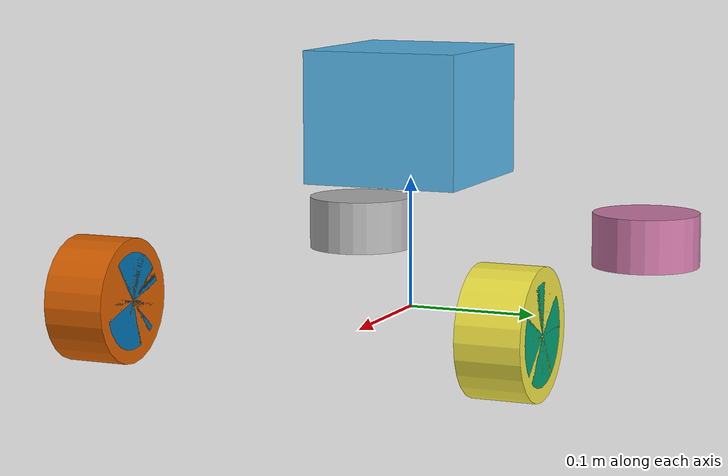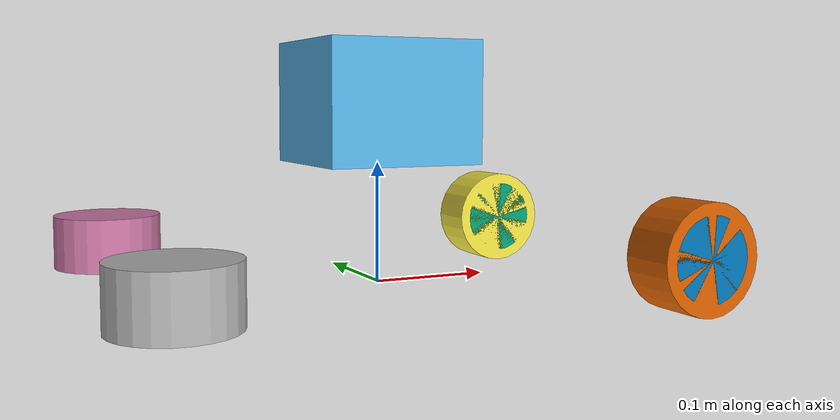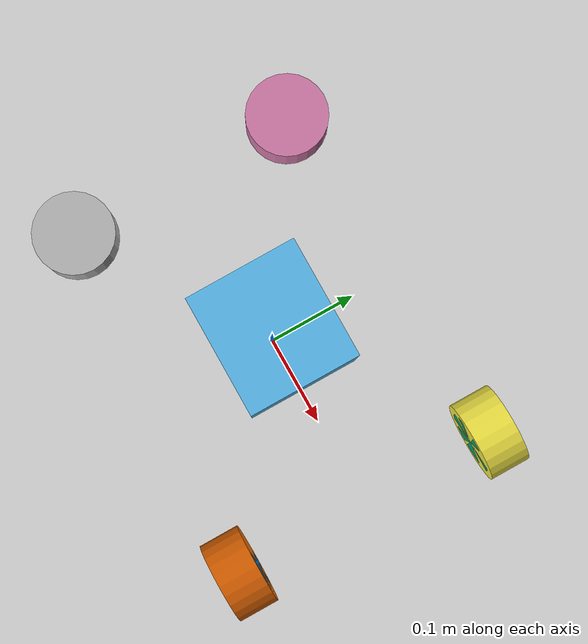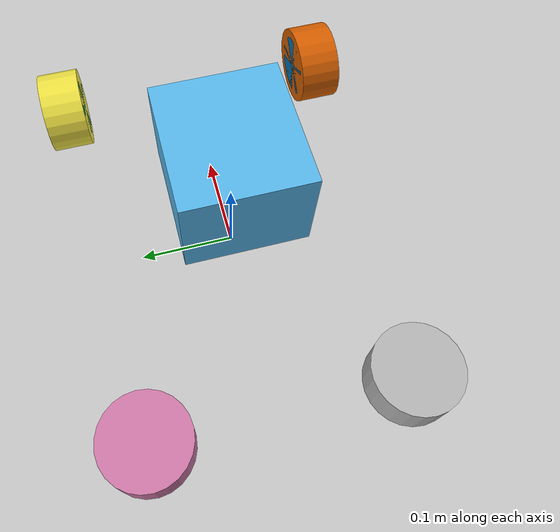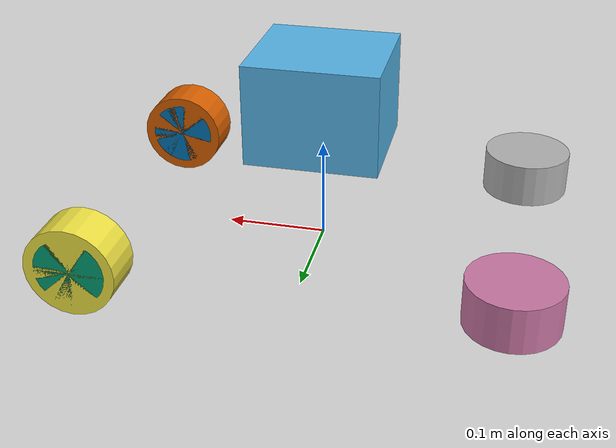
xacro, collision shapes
<?xml version="1.0"?>
<robot name="limo_ackerman" xmlns:xacro="http://www.ros.org/wiki/xacro">

  <!-- Args -->
  <xacro:arg name="robot_namespace" default="/limo"/>

  <!-- Common macros -->
  <xacro:include filename="$(find limo_description)/urdf/limo_xacro.xacro"/>
  <xacro:include filename="$(find limo_description)/urdf/limo_steering_hinge.xacro"/>

  <!-- ===== Vehicle parameters ===== -->
  <xacro:property name="M_PI" value="3.141592653589793"/>
  <xacro:property name="base_x_size" value="0.13"/>
  <xacro:property name="base_y_size" value="0.12"/>
  <xacro:property name="base_z_size" value="0.10"/>
  <xacro:property name="wheelbase" value="0.40"/>
  <xacro:property name="track" value="0.26"/>
  <xacro:property name="wheel_vertical_offset" value="-0.12"/>
  <xacro:property name="wheel_length" value="0.045"/>
  <xacro:property name="wheel_radius" value="0.045"/>

  <!-- ===== Base frames ===== -->
  <link name="base_footprint"/>
  <joint name="base_joint" type="fixed">
    <parent link="base_footprint"/>
    <child link="base_link"/>
    <origin xyz="0 0 0.15" rpy="0 0 0"/>
  </joint>

  <link name="base_link">
    <inertial>
      <origin xyz="0 0 0" rpy="0 0 0"/>
      <mass value="10.0"/>
      <inertia ixx="0.0203333333" ixy="0" ixz="0" iyy="0.0224166667" iyz="0" izz="0.0260833333"/>
    </inertial>
    <visual>
      <origin xyz="0 0 -0.15" rpy="0 0 1.57"/>
      <geometry>
        <mesh filename="package://limo_description/meshes/limo_base.dae" scale="1 1 1"/>
      </geometry>
    </visual>
    <collision>
      <origin xyz="0 0 0" rpy="0 0 0"/>
      <geometry>
        <box size="${base_x_size} ${base_y_size} ${base_z_size}"/>
      </geometry>
    </collision>
  </link>

  <!-- ===== Front steering (Ackermann) ===== -->
  <xacro:limo_left_steering_hinge parent_prefix="base_link" wheel_prefix="left_steering_joint">
    <origin xyz="${wheelbase/2} ${track/2} ${wheel_vertical_offset}" rpy="0 0 0"/>
  </xacro:limo_left_steering_hinge>

  <xacro:limo_right_steering_hinge parent_prefix="base_link" wheel_prefix="right_steering_joint">
    <origin xyz="${wheelbase/2} ${-track/2} ${wheel_vertical_offset}" rpy="${M_PI} 0 0"/>
  </xacro:limo_right_steering_hinge>

  <!-- ===== Rear wheels ===== -->
  <link name="rear_left_wheel_link">
    <inertial>
      <origin xyz="0 0 0"/>
      <mass value="0.5"/>
      <inertia ixx="0.01055" ixy="0" ixz="0" iyy="0.00075" iyz="0" izz="0.01055"/>
    </inertial>
    <visual>
      <geometry>
        <mesh filename="package://limo_description/meshes/limo_wheel.dae"/>
      </geometry>
    </visual>
    <collision>
      <geometry>
        <cylinder length="${wheel_length}" radius="${wheel_radius}"/>
      </geometry>
    </collision>
  </link>

  <joint name="rear_left_joint" type="continuous">
    <parent link="base_link"/>
    <child link="rear_left_wheel_link"/>
    <origin xyz="${-wheelbase/2} ${track/2} ${wheel_vertical_offset}" rpy="0 0 0"/>
    <axis xyz="0 1 0"/>
  </joint>

  <link name="rear_right_wheel_link">
    <inertial>
      <origin xyz="0 0 0"/>
      <mass value="0.5"/>
      <inertia ixx="0.01055" ixy="0" ixz="0" iyy="0.00075" iyz="0" izz="0.01055"/>
    </inertial>
    <visual>
      <geometry>
        <mesh filename="package://limo_description/meshes/limo_wheel.dae"/>
      </geometry>
    </visual>
    <collision>
      <geometry>
        <cylinder length="${wheel_length}" radius="${wheel_radius}"/>
      </geometry>
    </collision>
  </link>

  <joint name="rear_right_joint" type="continuous">
    <parent link="base_link"/>
    <child link="rear_right_wheel_link"/>
    <origin xyz="${-wheelbase/2} ${-track/2} ${wheel_vertical_offset}" rpy="0 0 0"/>
    <axis xyz="0 -1 0"/>
  </joint>

  <!-- Gazebo 플러그인 include -->
  <xacro:include filename="$(find limo_description)/urdf/limo_ackerman.gazebo"/>
</robot>

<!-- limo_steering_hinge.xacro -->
<robot name="limo_steering_hinge" xmlns:xacro="http://ros.org/wiki/xacro">

    <xacro:macro name="limo_left_steering_hinge" params="parent_prefix wheel_prefix *joint_pose">
        <link name="${wheel_prefix}">
            <inertial>
              <mass value="0.25" />
              <inertia ixx="0.00525" ixy="0" ixz="0" iyy="0.00035" iyz="0" izz="0.00525" />
              <origin xyz="0 0 0" />

            </inertial>
            <visual>
                <origin xyz="0 0 0" rpy="0 0 0" />
                <geometry>
                  <cylinder length="0.0001" radius="0.0001" />
                </geometry>
            </visual>
            <collision>
              <origin xyz="0 ${wheel_length/2} 0" rpy="1.57 0 0" />
              <geometry>
                  <cylinder length="${wheel_length}" radius="${wheel_radius-0.01}" />
              </geometry>
            </collision>
        </link>

        <joint name="${wheel_prefix}_wheel" type="revolute">
            <parent link="${parent_prefix}"/>
            <child link="${wheel_prefix}"/>
            <xacro:insert_block name="joint_pose"/>
            <axis xyz="0 0 1" />
            <limit lower="-0.523598767" upper="0.523598767" effort="5" velocity="0.5" />
            <dynamics damping="1.0" friction="2.0"/>

        </joint>

        <link name="front_left_wheel_link">
          <inertial>
            <mass value="0.25" />
            <inertia ixx="0.00525" ixy="0" ixz="0" iyy="0.00035" iyz="0" izz="0.00525" />
            <origin xyz="0 0 0" />

          </inertial>
          <visual>
              <origin xyz="0 0 0" rpy="0 0 0" />
              <geometry>
                  <mesh filename="package://limo_description/meshes/limo_wheel.dae" />
              </geometry>
          </visual>
          <collision>
            <origin xyz="0 ${wheel_length/2} 0" rpy="1.57 0 0" />
            <geometry>
                <cylinder length="${wheel_length}" radius="${wheel_radius}" />
            </geometry>
          </collision>
      </link>

      <joint name="front_left_wheel" type="continuous">
          <parent link="${wheel_prefix}"/>
          <child link="front_left_wheel_link"/>
          <origin xyz="0 0 0" rpy="0 0  0" />
          <axis xyz="0 1 0"/>
      </joint>
    </xacro:macro>

    <xacro:macro name="limo_right_steering_hinge" params="parent_prefix wheel_prefix *joint_pose">
        <link name="${wheel_prefix}">
          <inertial>
            <mass value="0.25" />
            <inertia ixx="0.00525" ixy="0" ixz="0" iyy="0.00035" iyz="0" izz="0.00525" />
            <origin xyz="0 0 0" />

          </inertial>
            <visual>
                <origin xyz="0 0 0" rpy="0 0 0" />
                <geometry>
                  <cylinder length="0.0001" radius="0.0001" />
                </geometry>
            </visual>
            <collision>
              <origin xyz="0 ${wheel_length/2} 0" rpy="1.57 0 0" />
              <geometry>
                  <cylinder length="${wheel_length}" radius="${wheel_radius-0.01}" />
              </geometry>
            </collision>
        </link>

        <joint name="${wheel_prefix}_wheel" type="revolute">
            <parent link="${parent_prefix}"/>
            <child link="${wheel_prefix}"/>
            <xacro:insert_block name="joint_pose"/>
            <axis xyz="0 0 -1"/>
            <limit lower="-0.523598767" upper="0.523598767" effort="5" velocity="0.5" />
            <dynamics damping="1.0" friction="2.0"/>
        </joint>

        <link name="front_right_wheel_link">
          <inertial>
            <mass value="0.25" />
            <inertia ixx="0.00525" ixy="0" ixz="0" iyy="0.00035" iyz="0" izz="0.00525" />
            <origin xyz="0 0 0" />
          </inertial>
          <visual>
              <origin xyz="0 0 0" rpy="0 0 0" />
              <geometry>
                  <mesh filename="package://limo_description/meshes/limo_wheel.dae" />
              </geometry>
          </visual>
          <collision>
            <origin xyz="0 ${wheel_length/2} 0" rpy="1.57 0 0" />
            <geometry>
                <cylinder length="${wheel_length}" radius="${wheel_radius}" />
            </geometry>
          </collision>
      </link>

      <joint name="front_right_wheel" type="continuous">
          <parent link="${wheel_prefix}"/>
          <child link="front_right_wheel_link"/>
          <origin xyz="0 0 0" rpy="0 0  0" />
          <axis xyz="0 -1 0"/>
      </joint>
    </xacro:macro>
</robot>
